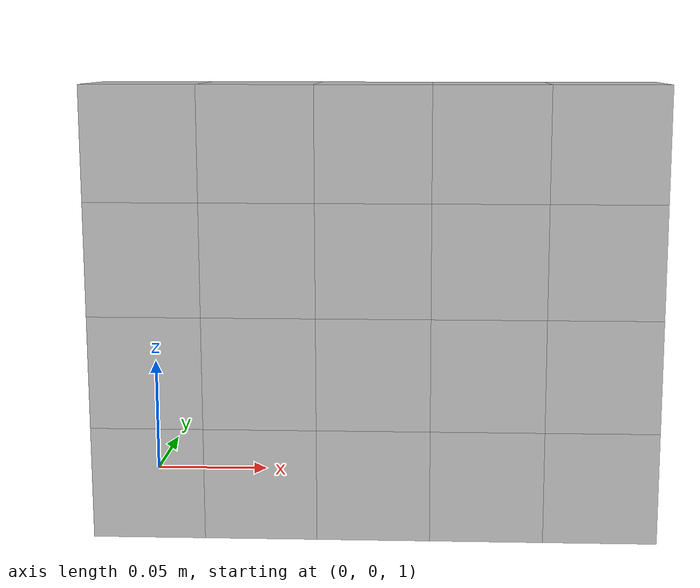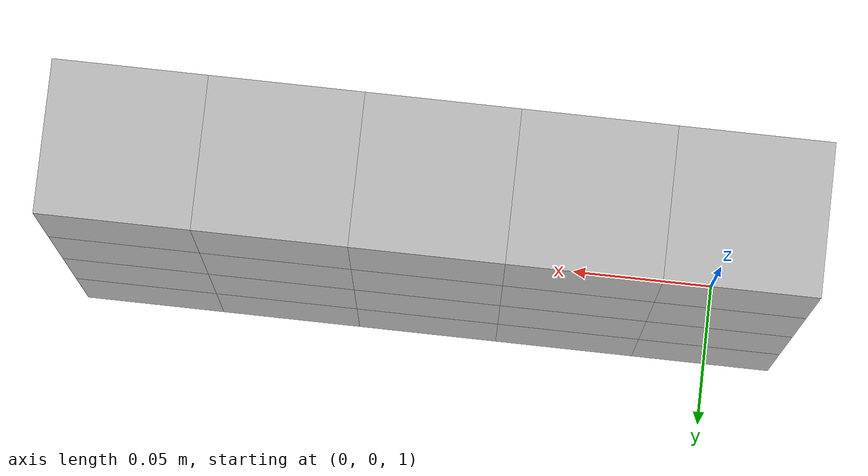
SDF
<?xml version="1.0" ?>
<sdf version="1.5">
  <model name="breakable_test">
    <pose>0 0 1 0 0 0</pose>
    <link name="link_0_0">
      <pose>0.0 0 0.0 0 0 0</pose>
      <inertial>
        <mass>0.3375</mass>
        <inertia>
          <ixx>0.00014062500000000004</ixx>
          <iyy>0.00014062500000000004</iyy>
          <izz>0.00014062500000000004</izz>
          <ixy>0.0</ixy>
          <ixz>0.0</ixz>
          <iyz>0.0</iyz>
        </inertia>
      </inertial>
      <collision name="collision">
        <geometry>
          <box>
            <size>0.05 0.05 0.05</size>
          </box>
        </geometry>
      </collision>
      <visual name="visual">
        <geometry>
          <box>
            <size>0.05 0.05 0.05</size>
          </box>
        </geometry>
      </visual>
    </link>
    <joint name="joint_0_0" type="revolute">
      <parent>world</parent>
      <child>link_0_0</child>
      <axis>
        <xyz>0 0 1</xyz>
        <limit>
          <lower>0.0</lower>
          <upper>0.0</upper>
        </limit>
        <use_parent_model_frame>true</use_parent_model_frame>
      </axis>
      <physics>
        <ode>
          <erp>1</erp>
          <cfm>1</cfm>
        </ode>
      </physics>
      <sensor name="force_torque" type="force_torque">
        <always_on>true</always_on>
        <update_rate>1000</update_rate>
        <plugin name="breakable_0_0" filename="libBreakableJointPlugin.so">
          <breaking_force_N>50</breaking_force_N>
        </plugin>
      </sensor>
    </joint>
    <link name="link_0_1">
      <pose>0.0 0 0.05 0 0 0</pose>
      <inertial>
        <mass>0.3375</mass>
        <inertia>
          <ixx>0.00014062500000000004</ixx>
          <iyy>0.00014062500000000004</iyy>
          <izz>0.00014062500000000004</izz>
          <ixy>0.0</ixy>
          <ixz>0.0</ixz>
          <iyz>0.0</iyz>
        </inertia>
      </inertial>
      <collision name="collision">
        <geometry>
          <box>
            <size>0.05 0.05 0.05</size>
          </box>
        </geometry>
      </collision>
      <visual name="visual">
        <geometry>
          <box>
            <size>0.05 0.05 0.05</size>
          </box>
        </geometry>
      </visual>
    </link>
    <joint name="joint_0_1" type="revolute">
      <parent>world</parent>
      <child>link_0_1</child>
      <axis>
        <xyz>0 0 1</xyz>
        <limit>
          <lower>0.0</lower>
          <upper>0.0</upper>
        </limit>
        <use_parent_model_frame>true</use_parent_model_frame>
      </axis>
      <physics>
        <ode>
          <erp>1</erp>
          <cfm>1</cfm>
        </ode>
      </physics>
      <sensor name="force_torque" type="force_torque">
        <always_on>true</always_on>
        <update_rate>1000</update_rate>
        <plugin name="breakable_0_1" filename="libBreakableJointPlugin.so">
          <breaking_force_N>50</breaking_force_N>
        </plugin>
      </sensor>
    </joint>
    <link name="link_0_2">
      <pose>0.0 0 0.1 0 0 0</pose>
      <inertial>
        <mass>0.3375</mass>
        <inertia>
          <ixx>0.00014062500000000004</ixx>
          <iyy>0.00014062500000000004</iyy>
          <izz>0.00014062500000000004</izz>
          <ixy>0.0</ixy>
          <ixz>0.0</ixz>
          <iyz>0.0</iyz>
        </inertia>
      </inertial>
      <collision name="collision">
        <geometry>
          <box>
            <size>0.05 0.05 0.05</size>
          </box>
        </geometry>
      </collision>
      <visual name="visual">
        <geometry>
          <box>
            <size>0.05 0.05 0.05</size>
          </box>
        </geometry>
      </visual>
    </link>
    <joint name="joint_0_2" type="revolute">
      <parent>world</parent>
      <child>link_0_2</child>
      <axis>
        <xyz>0 0 1</xyz>
        <limit>
          <lower>0.0</lower>
          <upper>0.0</upper>
        </limit>
        <use_parent_model_frame>true</use_parent_model_frame>
      </axis>
      <physics>
        <ode>
          <erp>1</erp>
          <cfm>1</cfm>
        </ode>
      </physics>
      <sensor name="force_torque" type="force_torque">
        <always_on>true</always_on>
        <update_rate>1000</update_rate>
        <plugin name="breakable_0_2" filename="libBreakableJointPlugin.so">
          <breaking_force_N>50</breaking_force_N>
        </plugin>
      </sensor>
    </joint>
    <link name="link_0_3">
      <pose>0.0 0 0.15000000000000002 0 0 0</pose>
      <inertial>
        <mass>0.3375</mass>
        <inertia>
          <ixx>0.00014062500000000004</ixx>
          <iyy>0.00014062500000000004</iyy>
          <izz>0.00014062500000000004</izz>
          <ixy>0.0</ixy>
          <ixz>0.0</ixz>
          <iyz>0.0</iyz>
        </inertia>
      </inertial>
      <collision name="collision">
        <geometry>
          <box>
            <size>0.05 0.05 0.05</size>
          </box>
        </geometry>
      </collision>
      <visual name="visual">
        <geometry>
          <box>
            <size>0.05 0.05 0.05</size>
          </box>
        </geometry>
      </visual>
    </link>
    <joint name="joint_0_3" type="revolute">
      <parent>world</parent>
      <child>link_0_3</child>
      <axis>
        <xyz>0 0 1</xyz>
        <limit>
          <lower>0.0</lower>
          <upper>0.0</upper>
        </limit>
        <use_parent_model_frame>true</use_parent_model_frame>
      </axis>
      <physics>
        <ode>
          <erp>1</erp>
          <cfm>1</cfm>
        </ode>
      </physics>
      <sensor name="force_torque" type="force_torque">
        <always_on>true</always_on>
        <update_rate>1000</update_rate>
        <plugin name="breakable_0_3" filename="libBreakableJointPlugin.so">
          <breaking_force_N>50</breaking_force_N>
        </plugin>
      </sensor>
    </joint>
    <link name="link_1_0">
      <pose>0.05 0 0.0 0 0 0</pose>
      <inertial>
        <mass>0.3375</mass>
        <inertia>
          <ixx>0.00014062500000000004</ixx>
          <iyy>0.00014062500000000004</iyy>
          <izz>0.00014062500000000004</izz>
          <ixy>0.0</ixy>
          <ixz>0.0</ixz>
          <iyz>0.0</iyz>
        </inertia>
      </inertial>
      <collision name="collision">
        <geometry>
          <box>
            <size>0.05 0.05 0.05</size>
          </box>
        </geometry>
      </collision>
      <visual name="visual">
        <geometry>
          <box>
            <size>0.05 0.05 0.05</size>
          </box>
        </geometry>
      </visual>
    </link>
    <joint name="joint_1_0" type="revolute">
      <parent>world</parent>
      <child>link_1_0</child>
      <axis>
        <xyz>0 0 1</xyz>
        <limit>
          <lower>0.0</lower>
          <upper>0.0</upper>
        </limit>
        <use_parent_model_frame>true</use_parent_model_frame>
      </axis>
      <physics>
        <ode>
          <erp>1</erp>
          <cfm>1</cfm>
        </ode>
      </physics>
      <sensor name="force_torque" type="force_torque">
        <always_on>true</always_on>
        <update_rate>1000</update_rate>
        <plugin name="breakable_1_0" filename="libBreakableJointPlugin.so">
          <breaking_force_N>50</breaking_force_N>
        </plugin>
      </sensor>
    </joint>
    <link name="link_1_1">
      <pose>0.05 0 0.05 0 0 0</pose>
      <inertial>
        <mass>0.3375</mass>
        <inertia>
          <ixx>0.00014062500000000004</ixx>
          <iyy>0.00014062500000000004</iyy>
          <izz>0.00014062500000000004</izz>
          <ixy>0.0</ixy>
          <ixz>0.0</ixz>
          <iyz>0.0</iyz>
        </inertia>
      </inertial>
      <collision name="collision">
        <geometry>
          <box>
            <size>0.05 0.05 0.05</size>
          </box>
        </geometry>
      </collision>
      <visual name="visual">
        <geometry>
          <box>
            <size>0.05 0.05 0.05</size>
          </box>
        </geometry>
      </visual>
    </link>
    <joint name="joint_1_1" type="revolute">
      <parent>world</parent>
      <child>link_1_1</child>
      <axis>
        <xyz>0 0 1</xyz>
        <limit>
          <lower>0.0</lower>
          <upper>0.0</upper>
        </limit>
        <use_parent_model_frame>true</use_parent_model_frame>
      </axis>
      <physics>
        <ode>
          <erp>1</erp>
          <cfm>1</cfm>
        </ode>
      </physics>
      <sensor name="force_torque" type="force_torque">
        <always_on>true</always_on>
        <update_rate>1000</update_rate>
        <plugin name="breakable_1_1" filename="libBreakableJointPlugin.so">
          <breaking_force_N>50</breaking_force_N>
        </plugin>
      </sensor>
    </joint>
    <link name="link_1_2">
      <pose>0.05 0 0.1 0 0 0</pose>
      <inertial>
        <mass>0.3375</mass>
        <inertia>
          <ixx>0.00014062500000000004</ixx>
          <iyy>0.00014062500000000004</iyy>
          <izz>0.00014062500000000004</izz>
          <ixy>0.0</ixy>
          <ixz>0.0</ixz>
          <iyz>0.0</iyz>
        </inertia>
      </inertial>
      <collision name="collision">
        <geometry>
          <box>
            <size>0.05 0.05 0.05</size>
          </box>
        </geometry>
      </collision>
      <visual name="visual">
        <geometry>
          <box>
            <size>0.05 0.05 0.05</size>
          </box>
        </geometry>
      </visual>
    </link>
    <joint name="joint_1_2" type="revolute">
      <parent>world</parent>
      <child>link_1_2</child>
      <axis>
        <xyz>0 0 1</xyz>
        <limit>
          <lower>0.0</lower>
          <upper>0.0</upper>
        </limit>
        <use_parent_model_frame>true</use_parent_model_frame>
      </axis>
      <physics>
        <ode>
          <erp>1</erp>
          <cfm>1</cfm>
        </ode>
      </physics>
      <sensor name="force_torque" type="force_torque">
        <always_on>true</always_on>
        <update_rate>1000</update_rate>
        <plugin name="breakable_1_2" filename="libBreakableJointPlugin.so">
          <breaking_force_N>50</breaking_force_N>
        </plugin>
      </sensor>
    </joint>
    <link name="link_1_3">
      <pose>0.05 0 0.15000000000000002 0 0 0</pose>
      <inertial>
        <mass>0.3375</mass>
        <inertia>
          <ixx>0.00014062500000000004</ixx>
          <iyy>0.00014062500000000004</iyy>
          <izz>0.00014062500000000004</izz>
          <ixy>0.0</ixy>
          <ixz>0.0</ixz>
          <iyz>0.0</iyz>
        </inertia>
      </inertial>
      <collision name="collision">
        <geometry>
          <box>
            <size>0.05 0.05 0.05</size>
          </box>
        </geometry>
      </collision>
      <visual name="visual">
        <geometry>
          <box>
            <size>0.05 0.05 0.05</size>
          </box>
        </geometry>
      </visual>
    </link>
    <joint name="joint_1_3" type="revolute">
      <parent>world</parent>
      <child>link_1_3</child>
      <axis>
        <xyz>0 0 1</xyz>
        <limit>
          <lower>0.0</lower>
          <upper>0.0</upper>
        </limit>
        <use_parent_model_frame>true</use_parent_model_frame>
      </axis>
      <physics>
        <ode>
          <erp>1</erp>
          <cfm>1</cfm>
        </ode>
      </physics>
      <sensor name="force_torque" type="force_torque">
        <always_on>true</always_on>
        <update_rate>1000</update_rate>
        <plugin name="breakable_1_3" filename="libBreakableJointPlugin.so">
          <breaking_force_N>50</breaking_force_N>
        </plugin>
      </sensor>
    </joint>
    <link name="link_2_0">
      <pose>0.1 0 0.0 0 0 0</pose>
      <inertial>
        <mass>0.3375</mass>
        <inertia>
          <ixx>0.00014062500000000004</ixx>
          <iyy>0.00014062500000000004</iyy>
          <izz>0.00014062500000000004</izz>
          <ixy>0.0</ixy>
          <ixz>0.0</ixz>
          <iyz>0.0</iyz>
        </inertia>
      </inertial>
      <collision name="collision">
        <geometry>
          <box>
            <size>0.05 0.05 0.05</size>
          </box>
        </geometry>
      </collision>
      <visual name="visual">
        <geometry>
          <box>
            <size>0.05 0.05 0.05</size>
          </box>
        </geometry>
      </visual>
    </link>
    <joint name="joint_2_0" type="revolute">
      <parent>world</parent>
      <child>link_2_0</child>
      <axis>
        <xyz>0 0 1</xyz>
        <limit>
          <lower>0.0</lower>
          <upper>0.0</upper>
        </limit>
        <use_parent_model_frame>true</use_parent_model_frame>
      </axis>
      <physics>
        <ode>
          <erp>1</erp>
          <cfm>1</cfm>
        </ode>
      </physics>
      <sensor name="force_torque" type="force_torque">
        <always_on>true</always_on>
        <update_rate>1000</update_rate>
        <plugin name="breakable_2_0" filename="libBreakableJointPlugin.so">
          <breaking_force_N>50</breaking_force_N>
        </plugin>
      </sensor>
    </joint>
    <link name="link_2_1">
      <pose>0.1 0 0.05 0 0 0</pose>
      <inertial>
        <mass>0.3375</mass>
        <inertia>
          <ixx>0.00014062500000000004</ixx>
          <iyy>0.00014062500000000004</iyy>
          <izz>0.00014062500000000004</izz>
          <ixy>0.0</ixy>
          <ixz>0.0</ixz>
          <iyz>0.0</iyz>
        </inertia>
      </inertial>
      <collision name="collision">
        <geometry>
          <box>
            <size>0.05 0.05 0.05</size>
          </box>
        </geometry>
      </collision>
      <visual name="visual">
        <geometry>
          <box>
            <size>0.05 0.05 0.05</size>
          </box>
        </geometry>
      </visual>
    </link>
    <joint name="joint_2_1" type="revolute">
      <parent>world</parent>
      <child>link_2_1</child>
      <axis>
        <xyz>0 0 1</xyz>
        <limit>
          <lower>0.0</lower>
          <upper>0.0</upper>
        </limit>
        <use_parent_model_frame>true</use_parent_model_frame>
      </axis>
      <physics>
        <ode>
          <erp>1</erp>
          <cfm>1</cfm>
        </ode>
      </physics>
      <sensor name="force_torque" type="force_torque">
        <always_on>true</always_on>
        <update_rate>1000</update_rate>
        <plugin name="breakable_2_1" filename="libBreakableJointPlugin.so">
          <breaking_force_N>50</breaking_force_N>
        </plugin>
      </sensor>
    </joint>
    <link name="link_2_2">
      <pose>0.1 0 0.1 0 0 0</pose>
      <inertial>
        <mass>0.3375</mass>
        <inertia>
          <ixx>0.00014062500000000004</ixx>
          <iyy>0.00014062500000000004</iyy>
          <izz>0.00014062500000000004</izz>
          <ixy>0.0</ixy>
          <ixz>0.0</ixz>
          <iyz>0.0</iyz>
        </inertia>
      </inertial>
      <collision name="collision">
        <geometry>
          <box>
            <size>0.05 0.05 0.05</size>
          </box>
        </geometry>
      </collision>
      <visual name="visual">
        <geometry>
          <box>
            <size>0.05 0.05 0.05</size>
          </box>
        </geometry>
      </visual>
    </link>
    <joint name="joint_2_2" type="revolute">
      <parent>world</parent>
      <child>link_2_2</child>
      <axis>
        <xyz>0 0 1</xyz>
        <limit>
          <lower>0.0</lower>
          <upper>0.0</upper>
        </limit>
        <use_parent_model_frame>true</use_parent_model_frame>
      </axis>
      <physics>
        <ode>
          <erp>1</erp>
          <cfm>1</cfm>
        </ode>
      </physics>
      <sensor name="force_torque" type="force_torque">
        <always_on>true</always_on>
        <update_rate>1000</update_rate>
        <plugin name="breakable_2_2" filename="libBreakableJointPlugin.so">
          <breaking_force_N>50</breaking_force_N>
        </plugin>
      </sensor>
    </joint>
    <link name="link_2_3">
      <pose>0.1 0 0.15000000000000002 0 0 0</pose>
      <inertial>
        <mass>0.3375</mass>
        <inertia>
          <ixx>0.00014062500000000004</ixx>
          <iyy>0.00014062500000000004</iyy>
          <izz>0.00014062500000000004</izz>
          <ixy>0.0</ixy>
          <ixz>0.0</ixz>
          <iyz>0.0</iyz>
        </inertia>
      </inertial>
      <collision name="collision">
        <geometry>
          <box>
            <size>0.05 0.05 0.05</size>
          </box>
        </geometry>
      </collision>
      <visual name="visual">
        <geometry>
          <box>
            <size>0.05 0.05 0.05</size>
          </box>
        </geometry>
      </visual>
    </link>
    <joint name="joint_2_3" type="revolute">
      <parent>world</parent>
      <child>link_2_3</child>
      <axis>
        <xyz>0 0 1</xyz>
        <limit>
          <lower>0.0</lower>
          <upper>0.0</upper>
        </limit>
        <use_parent_model_frame>true</use_parent_model_frame>
      </axis>
      <physics>
        <ode>
          <erp>1</erp>
          <cfm>1</cfm>
        </ode>
      </physics>
      <sensor name="force_torque" type="force_torque">
        <always_on>true</always_on>
        <update_rate>1000</update_rate>
        <plugin name="breakable_2_3" filename="libBreakableJointPlugin.so">
          <breaking_force_N>50</breaking_force_N>
        </plugin>
      </sensor>
    </joint>
    <link name="link_3_0">
      <pose>0.15000000000000002 0 0.0 0 0 0</pose>
      <inertial>
        <mass>0.3375</mass>
        <inertia>
          <ixx>0.00014062500000000004</ixx>
          <iyy>0.00014062500000000004</iyy>
          <izz>0.00014062500000000004</izz>
          <ixy>0.0</ixy>
          <ixz>0.0</ixz>
          <iyz>0.0</iyz>
        </inertia>
      </inertial>
      <collision name="collision">
        <geometry>
          <box>
            <size>0.05 0.05 0.05</size>
          </box>
        </geometry>
      </collision>
      <visual name="visual">
        <geometry>
          <box>
            <size>0.05 0.05 0.05</size>
          </box>
        </geometry>
      </visual>
    </link>
    <joint name="joint_3_0" type="revolute">
      <parent>world</parent>
      <child>link_3_0</child>
      <axis>
        <xyz>0 0 1</xyz>
        <limit>
          <lower>0.0</lower>
          <upper>0.0</upper>
        </limit>
        <use_parent_model_frame>true</use_parent_model_frame>
      </axis>
      <physics>
        <ode>
          <erp>1</erp>
          <cfm>1</cfm>
        </ode>
      </physics>
      <sensor name="force_torque" type="force_torque">
        <always_on>true</always_on>
        <update_rate>1000</update_rate>
        <plugin name="breakable_3_0" filename="libBreakableJointPlugin.so">
          <breaking_force_N>50</breaking_force_N>
        </plugin>
      </sensor>
    </joint>
    <link name="link_3_1">
      <pose>0.15000000000000002 0 0.05 0 0 0</pose>
      <inertial>
        <mass>0.3375</mass>
        <inertia>
          <ixx>0.00014062500000000004</ixx>
          <iyy>0.00014062500000000004</iyy>
          <izz>0.00014062500000000004</izz>
          <ixy>0.0</ixy>
          <ixz>0.0</ixz>
          <iyz>0.0</iyz>
        </inertia>
      </inertial>
      <collision name="collision">
        <geometry>
          <box>
            <size>0.05 0.05 0.05</size>
          </box>
        </geometry>
      </collision>
      <visual name="visual">
        <geometry>
          <box>
            <size>0.05 0.05 0.05</size>
          </box>
        </geometry>
      </visual>
    </link>
    <joint name="joint_3_1" type="revolute">
      <parent>world</parent>
      <child>link_3_1</child>
      <axis>
        <xyz>0 0 1</xyz>
        <limit>
          <lower>0.0</lower>
          <upper>0.0</upper>
        </limit>
        <use_parent_model_frame>true</use_parent_model_frame>
      </axis>
      <physics>
        <ode>
          <erp>1</erp>
          <cfm>1</cfm>
        </ode>
      </physics>
      <sensor name="force_torque" type="force_torque">
        <always_on>true</always_on>
        <update_rate>1000</update_rate>
        <plugin name="breakable_3_1" filename="libBreakableJointPlugin.so">
          <breaking_force_N>50</breaking_force_N>
        </plugin>
      </sensor>
    </joint>
    <link name="link_3_2">
      <pose>0.15000000000000002 0 0.1 0 0 0</pose>
      <inertial>
        <mass>0.3375</mass>
        <inertia>
          <ixx>0.00014062500000000004</ixx>
          <iyy>0.00014062500000000004</iyy>
          <izz>0.00014062500000000004</izz>
          <ixy>0.0</ixy>
          <ixz>0.0</ixz>
          <iyz>0.0</iyz>
        </inertia>
      </inertial>
      <collision name="collision">
        <geometry>
          <box>
            <size>0.05 0.05 0.05</size>
          </box>
        </geometry>
      </collision>
      <visual name="visual">
        <geometry>
          <box>
            <size>0.05 0.05 0.05</size>
          </box>
        </geometry>
      </visual>
    </link>
    <joint name="joint_3_2" type="revolute">
      <parent>world</parent>
      <child>link_3_2</child>
      <axis>
        <xyz>0 0 1</xyz>
        <limit>
          <lower>0.0</lower>
          <upper>0.0</upper>
        </limit>
        <use_parent_model_frame>true</use_parent_model_frame>
      </axis>
      <physics>
        <ode>
          <erp>1</erp>
          <cfm>1</cfm>
        </ode>
      </physics>
      <sensor name="force_torque" type="force_torque">
        <always_on>true</always_on>
        <update_rate>1000</update_rate>
        <plugin name="breakable_3_2" filename="libBreakableJointPlugin.so">
          <breaking_force_N>50</breaking_force_N>
        </plugin>
      </sensor>
    </joint>
    <link name="link_3_3">
      <pose>0.15000000000000002 0 0.15000000000000002 0 0 0</pose>
      <inertial>
        <mass>0.3375</mass>
        <inertia>
          <ixx>0.00014062500000000004</ixx>
          <iyy>0.00014062500000000004</iyy>
          <izz>0.00014062500000000004</izz>
          <ixy>0.0</ixy>
          <ixz>0.0</ixz>
          <iyz>0.0</iyz>
        </inertia>
      </inertial>
      <collision name="collision">
        <geometry>
          <box>
            <size>0.05 0.05 0.05</size>
          </box>
        </geometry>
      </collision>
      <visual name="visual">
        <geometry>
          <box>
            <size>0.05 0.05 0.05</size>
          </box>
        </geometry>
      </visual>
    </link>
    <joint name="joint_3_3" type="revolute">
      <parent>world</parent>
      <child>link_3_3</child>
      <axis>
        <xyz>0 0 1</xyz>
        <limit>
          <lower>0.0</lower>
          <upper>0.0</upper>
        </limit>
        <use_parent_model_frame>true</use_parent_model_frame>
      </axis>
      <physics>
        <ode>
          <erp>1</erp>
          <cfm>1</cfm>
        </ode>
      </physics>
      <sensor name="force_torque" type="force_torque">
        <always_on>true</always_on>
        <update_rate>1000</update_rate>
        <plugin name="breakable_3_3" filename="libBreakableJointPlugin.so">
          <breaking_force_N>50</breaking_force_N>
        </plugin>
      </sensor>
    </joint>
    <link name="link_4_0">
      <pose>0.2 0 0.0 0 0 0</pose>
      <inertial>
        <mass>0.3375</mass>
        <inertia>
          <ixx>0.00014062500000000004</ixx>
          <iyy>0.00014062500000000004</iyy>
          <izz>0.00014062500000000004</izz>
          <ixy>0.0</ixy>
          <ixz>0.0</ixz>
          <iyz>0.0</iyz>
        </inertia>
      </inertial>
      <collision name="collision">
        <geometry>
          <box>
            <size>0.05 0.05 0.05</size>
          </box>
        </geometry>
      </collision>
      <visual name="visual">
        <geometry>
          <box>
            <size>0.05 0.05 0.05</size>
          </box>
        </geometry>
      </visual>
    </link>
    <joint name="joint_4_0" type="revolute">
      <parent>world</parent>
      <child>link_4_0</child>
      <axis>
        <xyz>0 0 1</xyz>
        <limit>
          <lower>0.0</lower>
          <upper>0.0</upper>
        </limit>
        <use_parent_model_frame>true</use_parent_model_frame>
      </axis>
      <physics>
        <ode>
          <erp>1</erp>
          <cfm>1</cfm>
        </ode>
      </physics>
      <sensor name="force_torque" type="force_torque">
        <always_on>true</always_on>
        <update_rate>1000</update_rate>
        <plugin name="breakable_4_0" filename="libBreakableJointPlugin.so">
          <breaking_force_N>50</breaking_force_N>
        </plugin>
      </sensor>
    </joint>
    <link name="link_4_1">
      <pose>0.2 0 0.05 0 0 0</pose>
      <inertial>
        <mass>0.3375</mass>
        <inertia>
          <ixx>0.00014062500000000004</ixx>
          <iyy>0.00014062500000000004</iyy>
          <izz>0.00014062500000000004</izz>
          <ixy>0.0</ixy>
          <ixz>0.0</ixz>
          <iyz>0.0</iyz>
        </inertia>
      </inertial>
      <collision name="collision">
        <geometry>
          <box>
            <size>0.05 0.05 0.05</size>
          </box>
        </geometry>
      </collision>
      <visual name="visual">
        <geometry>
          <box>
            <size>0.05 0.05 0.05</size>
          </box>
        </geometry>
      </visual>
    </link>
    <joint name="joint_4_1" type="revolute">
      <parent>world</parent>
      <child>link_4_1</child>
      <axis>
        <xyz>0 0 1</xyz>
        <limit>
          <lower>0.0</lower>
          <upper>0.0</upper>
        </limit>
        <use_parent_model_frame>true</use_parent_model_frame>
      </axis>
      <physics>
        <ode>
          <erp>1</erp>
          <cfm>1</cfm>
        </ode>
      </physics>
      <sensor name="force_torque" type="force_torque">
        <always_on>true</always_on>
        <update_rate>1000</update_rate>
        <plugin name="breakable_4_1" filename="libBreakableJointPlugin.so">
          <breaking_force_N>50</breaking_force_N>
        </plugin>
      </sensor>
    </joint>
    <link name="link_4_2">
      <pose>0.2 0 0.1 0 0 0</pose>
      <inertial>
        <mass>0.3375</mass>
        <inertia>
          <ixx>0.00014062500000000004</ixx>
          <iyy>0.00014062500000000004</iyy>
          <izz>0.00014062500000000004</izz>
          <ixy>0.0</ixy>
          <ixz>0.0</ixz>
          <iyz>0.0</iyz>
        </inertia>
      </inertial>
      <collision name="collision">
        <geometry>
          <box>
            <size>0.05 0.05 0.05</size>
          </box>
        </geometry>
      </collision>
      <visual name="visual">
        <geometry>
          <box>
            <size>0.05 0.05 0.05</size>
          </box>
        </geometry>
      </visual>
    </link>
    <joint name="joint_4_2" type="revolute">
      <parent>world</parent>
      <child>link_4_2</child>
      <axis>
        <xyz>0 0 1</xyz>
        <limit>
          <lower>0.0</lower>
          <upper>0.0</upper>
        </limit>
        <use_parent_model_frame>true</use_parent_model_frame>
      </axis>
      <physics>
        <ode>
          <erp>1</erp>
          <cfm>1</cfm>
        </ode>
      </physics>
      <sensor name="force_torque" type="force_torque">
        <always_on>true</always_on>
        <update_rate>1000</update_rate>
        <plugin name="breakable_4_2" filename="libBreakableJointPlugin.so">
          <breaking_force_N>50</breaking_force_N>
        </plugin>
      </sensor>
    </joint>
    <link name="link_4_3">
      <pose>0.2 0 0.15000000000000002 0 0 0</pose>
      <inertial>
        <mass>0.3375</mass>
        <inertia>
          <ixx>0.00014062500000000004</ixx>
          <iyy>0.00014062500000000004</iyy>
          <izz>0.00014062500000000004</izz>
          <ixy>0.0</ixy>
          <ixz>0.0</ixz>
          <iyz>0.0</iyz>
        </inertia>
      </inertial>
      <collision name="collision">
        <geometry>
          <box>
            <size>0.05 0.05 0.05</size>
          </box>
        </geometry>
      </collision>
      <visual name="visual">
        <geometry>
          <box>
            <size>0.05 0.05 0.05</size>
          </box>
        </geometry>
      </visual>
    </link>
    <joint name="joint_4_3" type="revolute">
      <parent>world</parent>
      <child>link_4_3</child>
      <axis>
        <xyz>0 0 1</xyz>
        <limit>
          <lower>0.0</lower>
          <upper>0.0</upper>
        </limit>
        <use_parent_model_frame>true</use_parent_model_frame>
      </axis>
      <physics>
        <ode>
          <erp>1</erp>
          <cfm>1</cfm>
        </ode>
      </physics>
      <sensor name="force_torque" type="force_torque">
        <always_on>true</always_on>
        <update_rate>1000</update_rate>
        <plugin name="breakable_4_3" filename="libBreakableJointPlugin.so">
          <breaking_force_N>50</breaking_force_N>
        </plugin>
      </sensor>
    </joint>
  </model>
</sdf>
